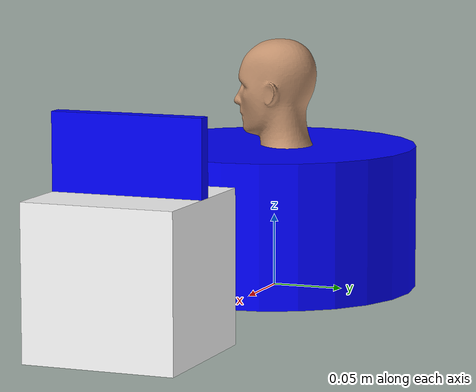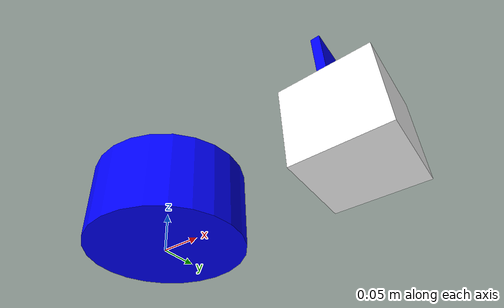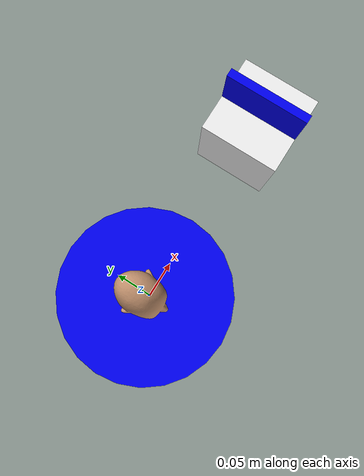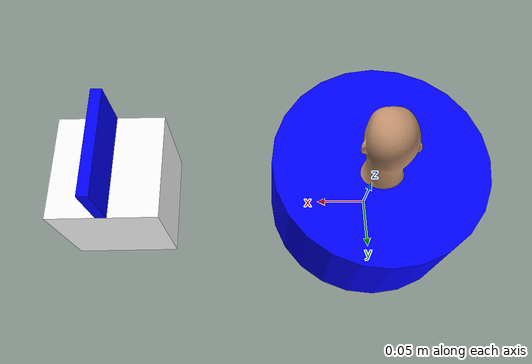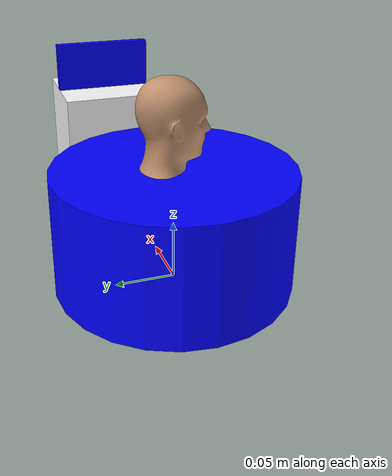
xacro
<?xml version="1.0"?>

<robot name="head_robot"
       xmlns:xacro="http://www.ros.org/wiki/xacro">

       <xacro:include filename="properties.xacro"/>

       <xacro:include filename="materials.xacro"/>

       <xacro:include filename="macros.xacro"/>

       <xacro:include filename="base.xacro"/>

       <xacro:include filename="head_neck.xacro"/>

       <xacro:include filename="head.xacro"/>

       <xacro:include filename="gazebo_head.xacro"/>

       <xacro:include filename="cam_stand.xacro"/>

       <xacro:include filename="camera_mount.xacro"/>

</robot>

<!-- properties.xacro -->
<robot xmlns:xacro="http://www.ros.org/wiki/xacro">

    <xacro:property name="base_radius" value="0.1"/>
    <xacro:property name="base_height" value="0.1"/>

    <xacro:property name="leg_length" value="0.8"/>
    <xacro:property name="leg_width" value="0.1"/>
    <xacro:property name="leg_height" value="0.2"/>

    <xacro:property name="Wheel_mount_length" value="0.1"/>
    <xacro:property name="Wheel_mount_width" value="0.4"/>
    <xacro:property name="Wheel_mount_height" value="0.2"/>
    <xacro:property name="Wheel_separation" value="0.1"/>

    <xacro:property name="wheel_radius" value="0.04"/>
    <xacro:property name="wheel_height" value="0.08"/>

    <xacro:property name="sensor_mount_length" value="0.08"/>
    <xacro:property name="sensor_mount_width" value="0.08"/>
    <xacro:property name="sensor_mount_height" value="0.08"/>

</robot>

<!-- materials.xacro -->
<robot xmlns:xacro="http://www.ros.org/wiki/xacro">

    <material name="blue">
        <color rgba="0 0 1 1"/>
    </material>

    <material name="white">
        <color rgba="1 1 1 1"/>
    </material>

</robot>

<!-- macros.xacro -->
<robot xmlns:xacro="http://www.ros.org/wiki/xacro">

    <xacro:macro name="box_link"
                 params="name x y z color xc yc zc r p j">

        <link name="${name}">

            <visual>
                <geometry>
                    <box size="${x} ${y} ${z}"/>
                </geometry>
                <material name="${color}"/>
                <origin xyz="${xc} ${yc} ${zc}" rpy="${r} ${p} ${j}"/>
            </visual>

            <collision>
                <geometry>
                    <box size="${x} ${y} ${z}"/>
                </geometry>
            </collision>

            <inertial>
                <origin xyz="0 0 0"/>
                <mass value="1.0"/>

                <inertia
                    ixx="0.01"
                    ixy="0"
                    ixz="0"
                    iyy="0.01"
                    iyz="0"
                    izz="0.01"/>
            </inertial>

        </link>

    </xacro:macro>

    <xacro:macro name="box_inertia" params="m x y z o_xyz o_rpy">

        <inertial>

            <origin xyz="${o_xyz}" rpy="${o_rpy}"/>

            <mass value="${m}"/>

            <inertia
                ixx="${m*(y*y+z*z)/12}"
                ixy="0"
                ixz="0"
                iyy="${m*(x*x+z*z)/12}"
                iyz="0"
                izz="${m*(x*x+y*y)/12}"/>

        </inertial>

    </xacro:macro>

    <xacro:macro name="cylinder_link"
                 params="name radius length color xc yc zc r p j">

        <link name="${name}">

            <visual>
                <geometry>
                    <cylinder radius="${radius}"
                              length="${length}"/>
                </geometry>
                <origin xyz="${xc} ${yc} ${zc}" rpy="${r} ${p} ${j}"/>
                <material name="${color}"/>
            </visual>

            <collision>
                <geometry>
                    <cylinder radius="${radius}"
                              length="${length}"/>
                </geometry>
            </collision>

            <inertial>

                <origin xyz="0 0 0"/>

                <mass value="2.0"/>

                <inertia
                    ixx="0.02"
                    ixy="0"
                    ixz="0"
                    iyy="0.02"
                    iyz="0"
                    izz="0.02"/>

            </inertial>

        </link>

    </xacro:macro>

    <xacro:macro name="sphere_link"
                 params="name radius color">

        <link name="${name}">

            <visual>

                <geometry>
                    <sphere radius="${radius}"/>
                </geometry>

                <material name="${color}"/>

            </visual>

            <collision>

                <geometry>
                    <sphere radius="${radius}"/>
                </geometry>

            </collision>

            <inertial>

                <origin xyz="0 0 0"/>

                <mass value="1.0"/>

                <inertia
                    ixx="0.01"
                    ixy="0"
                    ixz="0"
                    iyy="0.01"
                    iyz="0"
                    izz="0.01"/>

            </inertial>

        </link>

    </xacro:macro>

    <xacro:macro name="fixed_joint"
                 params="name parent child x y z">

        <joint name="${name}"
               type="fixed">

            <parent link="${parent}"/>

            <child link="${child}"/>

            <origin xyz="${x} ${y} ${z}"
                    rpy="0 0 0"/>

        </joint>

    </xacro:macro>

    <xacro:macro name="continuous_joint"
                 params="name parent child x y z ax ay az">

        <joint name="${name}"
               type="continuous">

            <parent link="${parent}"/>

            <child link="${child}"/>

            <origin xyz="${x} ${y} ${z}"
                    rpy="0 0 0"/>

            <axis xyz="${ax} ${ay} ${az}"/>

        </joint>

    </xacro:macro>
    <xacro:macro name="revolute_joint"
             params="name parent child x y z ax ay az lower upper effort velocity">

    <joint name="${name}"
           type="revolute">

        <parent link="${parent}"/>

        <child link="${child}"/>

        <origin xyz="${x} ${y} ${z}"
                rpy="0 0 0"/>

        <axis xyz="${ax} ${ay} ${az}"/>

        <limit lower="${lower}"
               upper="${upper}"
               effort="${effort}"
               velocity="${velocity}"/>

    </joint>

</xacro:macro>

</robot>

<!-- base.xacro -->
<robot xmlns:xacro="http://www.ros.org/wiki/xacro">
<link name="world"/>
    <link name="base"/>
    <gazebo reference="base">
        <static>true</static>
    </gazebo>
    <xacro:fixed_joint
    name="world_frame"
    parent="world"
    child="base"
    x="0"
    y="0"
    z="0"/>
</robot>

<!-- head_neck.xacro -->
<robot xmlns:xacro="http://www.ros.org/wiki/xacro">

<link name="head_neck">

    <visual>

        <geometry>

            <cylinder
                radius="${base_radius}"
                length="${base_height}"/>

        </geometry>
        <material name ="blue"/>

    </visual>
    <collision>
                <geometry>
                    <cylinder radius="${base_radius}"
                              length="${base_height}"/>
                </geometry>
    </collision>

    <inertial>

                <origin xyz="0 0 0"/>

                <mass value="2.0"/>

                <inertia
                    ixx="0.02"
                    ixy="0"
                    ixz="0"
                    iyy="0.02"
                    iyz="0"
                    izz="0.02"/>

    </inertial>

</link>

<xacro:fixed_joint
    name="head_joint"
    parent="base"
    child="head_neck"
    x="0"
    y="0"
    z="${base_height/2.0}"
/>

</robot>

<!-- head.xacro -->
<robot xmlns:xacro="http://www.ros.org/wiki/xacro">

<link name="head">

            <visual>

                <geometry>
                    <mesh filename="package://single_camera/meshes/humanhead.stl" scale="0.0005 0.0005 0.0005"/>
                </geometry>
                <origin xyz="0.0 0.0 0.0" rpy="0.0 0.0 0.0"/>
                <material name="skin">
                    <color rgba="0.76 0.57 0.43 1.0"/>
                </material>
            </visual>

            <collision>

                <geometry>
                     <mesh filename="package://single_camera/meshes/humanhead.stl"
                                scale="0.0005 0.0005 0.0005"/>
                </geometry>

            </collision>

            <inertial>
                <origin xyz="0.000173 0.007162 0.105562" rpy="0 0 0" />
                <mass value="1.3089" />
               <inertia ixx="0.004345" ixy="-0.000000" ixz="-0.000001"
                        iyy="0.004131" iyz="0.000266"
                        izz="0.001328" />
                </inertial>

</link>

<xacro:revolute_joint
    name="neck_joint"
    parent="head_neck"
    child="head"
    x="0"
    y="0"
    z="${base_height-0.025}"
    ax="0"
    ay="0"
    az="1"
    lower="0"
    upper="3.14"
    effort="0.15"
    velocity="9.2"/>

</robot>

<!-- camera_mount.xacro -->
<robot xmlns:xacro="http://www.ros.org/wiki/xacro">

    <xacro:property name="camera_length" value="0.01" />
    <xacro:property name="camera_width" value="0.1" />
    <xacro:property name="camera_height" value="0.05" />

    <link name="camera_link">
        <visual>
            <geometry>
                <box size="${camera_length} ${camera_width} ${camera_height}" />
            </geometry>
            <material name="blue" />
        </visual>
        <collision>
            <geometry>
                <box size="${camera_length} ${camera_width} ${camera_height}" />
            </geometry>
        </collision>
        <xacro:box_inertia m="0.1" x="${camera_length}" y="${camera_width}" z="${camera_height}"
                           o_xyz="0 0 0" o_rpy="0 0 0" />
    </link>

    <joint name="base_camera_joint" type="fixed">
        <parent link="cam_stand" />
        <child link="camera_link" />
        <origin xyz="0 0 0.075" rpy="0 0 ${pi}" />
    </joint>

    <link name="camera_link_optical" />

    <joint name="camera_optical_joint" type="fixed">
        <origin xyz="0 0 0" rpy="${-pi/2} 0 ${-pi/2}"/>
        <parent link="camera_link"/>
        <child link="camera_link_optical"/>
    </joint>

    <gazebo reference="camera_link">
        <sensor name="camera" type="camera">
            <camera>
                <horizontal_fov>1.3962634</horizontal_fov>
                <image>
                    <width>1280</width>
                    <height>720</height>
                    <format>R8G8B8</format>
                </image>
                <clip>
                    <near>0.1</near>
                    <far>15</far>
                </clip>
                <noise>
                    <type>gaussian</type>
                    <mean>0.0</mean>
                    <stddev>0.007</stddev>
                </noise>
                <optical_frame_id>camera_link_optical</optical_frame_id>
                <camera_info_topic>camera/camera_info</camera_info_topic>
            </camera>
            <always_on>1</always_on>
            <update_rate>120</update_rate>
            <visualize>true</visualize>
            <topic>camera/image_raw</topic>
        </sensor>
    </gazebo>

</robot>
